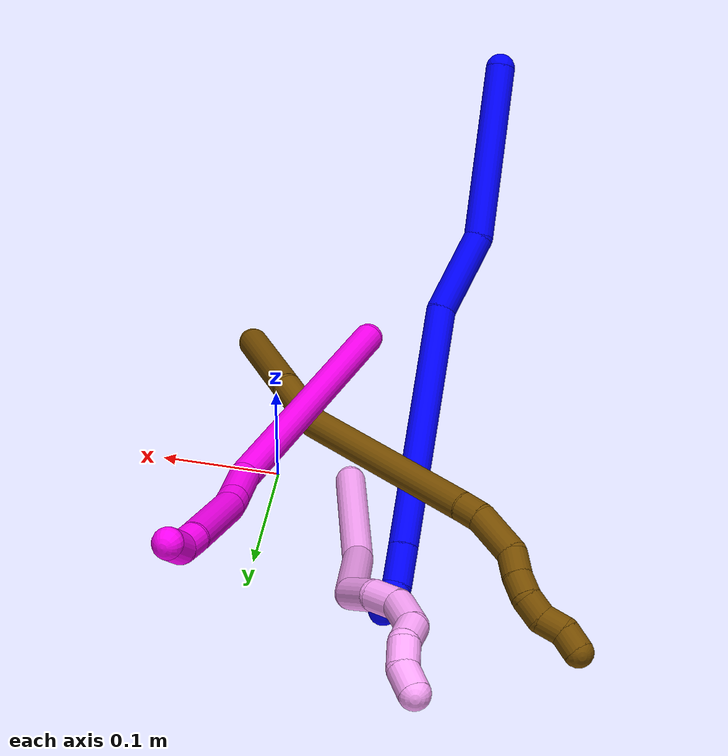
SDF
<sdf version="1.7">
 <world name="default">
  <model name="photoneo_s_sensor">
   <static>1</static>
   <pose>0 0 2 1.57079 1.57079 3.14159</pose>
   <link name="link">
    <inertial><mass>0.1</mass></inertial>
    <sensor name="sensor" type="depth">
     <update_rate>30</update_rate>
     <camera>
      <horizontal_fov>1.22</horizontal_fov>
      <image><width>1920</width><height>1200</height><format>B8G8R8</format></image>
      <clip><near>0.1</near><far>4</far></clip>
      <depth_camera><output>points</output></depth_camera>
     </camera>
     <plugin name="camera_plugin" filename="libgazebo_ros_depth_camera.so">
      <baseline>0.2</baseline>
      <alwaysOn>1</alwaysOn>
      <updateRate>0.0</updateRate>
      <cameraName>camera_ir</cameraName>
      <imageTopicName>/camera/color/image_raw</imageTopicName>
      <cameraInfoTopicName>/camera/color/camera_info</cameraInfoTopicName>
      <depthImageTopicName>/camera/depth/image_raw</depthImageTopicName>
      <depthImageCameraInfoTopicName>/camera/depth/camera_info</depthImageCameraInfoTopicName>
      <pointCloudTopicName>/camera/depth/points</pointCloudTopicName>
      <frameName>fr_optical</frameName>
      <pointCloudCutoff>0.1</pointCloudCutoff>
      <pointCloudCutoffMax>2.0</pointCloudCutoffMax>
      <distortionK1>0</distortionK1>
      <distortionK2>0</distortionK2>
      <distortionK3>0</distortionK3>
      <distortionT1>0</distortionT1>
      <distortionT2>0</distortionT2>
      <CxPrime>0</CxPrime>
      <Cx>0</Cx>
      <Cy>0</Cy>
      <focalLength>0</focalLength>
      <hackBaseline>0</hackBaseline>
     </plugin>
    </sensor>
   </link>
  </model>
  <model name="bin">
   <static>1</static>
   <link name="bottom">
    <collision name="collision-bottom">
     <pose>0 0 -0.01 0 -0 0</pose>
     <geometry><box><size>0.8 0.6 0.02</size></box></geometry>
     <surface>
      <friction><ode><mu>100</mu><mu2>100</mu2></ode></friction>
      <contact><collide_bitmask>65535</collide_bitmask></contact>
     </surface>
    </collision>
   </link>
   <link name="west_wall">
    <collision name="collision-west_wall">
     <pose>-0.41 0 0.1 0 -0 0</pose>
     <geometry><box><size>0.02 0.6 0.2</size></box></geometry>
     <surface>
      <friction><ode><mu>100</mu><mu2>100</mu2></ode></friction>
      <contact><collide_bitmask>65535</collide_bitmask></contact>
     </surface>
    </collision>
   </link>
   <link name="east_wall">
    <collision name="collision-east_wall">
     <pose>0.41 0 0.1 0 -0 0</pose>
     <geometry><box><size>0.02 0.6 0.2</size></box></geometry>
     <surface>
      <friction><ode><mu>100</mu><mu2>100</mu2></ode></friction>
      <contact><collide_bitmask>65535</collide_bitmask></contact>
     </surface>
    </collision>
   </link>
   <link name="south_wall">
    <collision name="collision-south_wall">
     <pose>0 -0.31 0.1 0 -0 0</pose>
     <geometry><box><size>0.8 0.02 0.2</size></box></geometry>
     <surface>
      <friction><ode><mu>100</mu><mu2>100</mu2></ode></friction>
      <contact><collide_bitmask>65535</collide_bitmask></contact>
     </surface>
    </collision>
   </link>
   <link name="north_wall">
    <collision name="collision-north_wall">
     <pose>0 0.31 0.1 0 -0 0</pose>
     <geometry><box><size>0.8 0.02 0.2</size></box></geometry>
     <surface>
      <friction><ode><mu>100</mu><mu2>100</mu2></ode></friction>
      <contact><collide_bitmask>65535</collide_bitmask></contact>
     </surface>
    </collision>
   </link>
  </model>
  <model name="1">
   <static>0</static>
   <link name="1">
    <collision name="collision-cylinder-e_1_1_4">
     <pose>-0.000336 0.070709 -0.029975 -1.97175 -0.004379 0.006613</pose>
     <geometry><cylinder><radius>0.0125</radius><length>0.153601</length></cylinder></geometry>
     <surface>
      <friction><ode><mu>1.16</mu><mu2>1.16</mu2><slip1>0</slip1><slip2>0</slip2></ode></friction>
      <contact><ode><kp>1e+06</kp><kd>1</kd><max_vel>0</max_vel><min_depth>0.001</min_depth></ode></contact>
     </surface>
    </collision>
    <visual name="visual-cylinder-e_1_1_4">
     <pose>-0.000336 0.070709 -0.029975 -1.97175 -0.004379 0.006613</pose>
     <geometry><cylinder><radius>0.0125</radius><length>0.153601</length></cylinder></geometry>
     <material><ambient>0 0 1 1</ambient></material>
    </visual>
    <collision name="collision-cylinder-e_2_4_5">
     <pose>0.010596 0.174072 -0.070614 -1.88647 0.316987 -0.433754</pose>
     <geometry><cylinder><radius>0.0125</radius><length>0.072305</length></cylinder></geometry>
     <surface>
      <friction><ode><mu>1.16</mu><mu2>1.16</mu2><slip1>0</slip1><slip2>0</slip2></ode></friction>
      <contact><ode><kp>1e+06</kp><kd>1</kd><max_vel>0</max_vel><min_depth>0.001</min_depth></ode></contact>
     </surface>
    </collision>
    <visual name="visual-cylinder-e_2_4_5">
     <pose>0.010596 0.174072 -0.070614 -1.88647 0.316987 -0.433754</pose>
     <geometry><cylinder><radius>0.0125</radius><length>0.072305</length></cylinder></geometry>
     <material><ambient>0 0 1 1</ambient></material>
    </visual>
    <collision name="collision-cylinder-e_3_5_6">
     <pose>0.021424 0.310558 -0.108025 -1.82291 -0.004117 0.005312</pose>
     <geometry><cylinder><radius>0.0125</radius><length>0.214445</length></cylinder></geometry>
     <surface>
      <friction><ode><mu>1.16</mu><mu2>1.16</mu2><slip1>0</slip1><slip2>0</slip2></ode></friction>
      <contact><ode><kp>1e+06</kp><kd>1</kd><max_vel>0</max_vel><min_depth>0.001</min_depth></ode></contact>
     </surface>
    </collision>
    <visual name="visual-cylinder-e_3_5_6">
     <pose>0.021424 0.310558 -0.108025 -1.82291 -0.004117 0.005312</pose>
     <geometry><cylinder><radius>0.0125</radius><length>0.214445</length></cylinder></geometry>
     <material><ambient>0 0 1 1</ambient></material>
    </visual>
    <collision name="collision-cylinder-e_4_6_7">
     <pose>0.02102 0.431373 -0.139416 -1.83775 0.002114 -0.002769</pose>
     <geometry><cylinder><radius>0.0125</radius><length>0.035213</length></cylinder></geometry>
     <surface>
      <friction><ode><mu>1.16</mu><mu2>1.16</mu2><slip1>0</slip1><slip2>0</slip2></ode></friction>
      <contact><ode><kp>1e+06</kp><kd>1</kd><max_vel>0</max_vel><min_depth>0.001</min_depth></ode></contact>
     </surface>
    </collision>
    <visual name="visual-cylinder-e_4_6_7">
     <pose>0.02102 0.431373 -0.139416 -1.83775 0.002114 -0.002769</pose>
     <geometry><cylinder><radius>0.0125</radius><length>0.035213</length></cylinder></geometry>
     <material><ambient>0 0 1 1</ambient></material>
    </visual>
    <collision name="collision-cylinder-e_5_7_2">
     <pose>0.024497 0.460073 -0.144452 -1.6042 0.285411 -0.294971</pose>
     <geometry><cylinder><radius>0.0125</radius><length>0.024435</length></cylinder></geometry>
     <surface>
      <friction><ode><mu>1.16</mu><mu2>1.16</mu2><slip1>0</slip1><slip2>0</slip2></ode></friction>
      <contact><ode><kp>1e+06</kp><kd>1</kd><max_vel>0</max_vel><min_depth>0.001</min_depth></ode></contact>
     </surface>
    </collision>
    <visual name="visual-cylinder-e_5_7_2">
     <pose>0.024497 0.460073 -0.144452 -1.6042 0.285411 -0.294971</pose>
     <geometry><cylinder><radius>0.0125</radius><length>0.024435</length></cylinder></geometry>
     <material><ambient>0 0 1 1</ambient></material>
    </visual>
    <collision name="collision-sphere-2">
     <pose>0.027937 0.47179 -0.144843 0 -0 0</pose>
     <geometry><sphere><radius>0.0125</radius></sphere></geometry>
     <surface>
      <friction><ode><mu>1.16</mu><mu2>1.16</mu2><slip1>0</slip1><slip2>0</slip2></ode></friction>
      <contact><ode><kp>1e+06</kp><kd>1</kd><max_vel>0</max_vel><min_depth>0.001</min_depth></ode></contact>
     </surface>
    </collision>
    <visual name="visual-sphere-2">
     <pose>0.027937 0.47179 -0.144843 0 -0 0</pose>
     <geometry><sphere><radius>0.0125</radius></sphere></geometry>
     <material><ambient>0 0 1 1</ambient></material>
    </visual>
    <collision name="collision-sphere-7">
     <pose>0.021057 0.448356 -0.14406 0 -0 0</pose>
     <geometry><sphere><radius>0.0125</radius></sphere></geometry>
     <surface>
      <friction><ode><mu>1.16</mu><mu2>1.16</mu2><slip1>0</slip1><slip2>0</slip2></ode></friction>
      <contact><ode><kp>1e+06</kp><kd>1</kd><max_vel>0</max_vel><min_depth>0.001</min_depth></ode></contact>
     </surface>
    </collision>
    <visual name="visual-sphere-7">
     <pose>0.021057 0.448356 -0.14406 0 -0 0</pose>
     <geometry><sphere><radius>0.0125</radius></sphere></geometry>
     <material><ambient>0 0 1 1</ambient></material>
    </visual>
    <collision name="collision-sphere-6">
     <pose>0.020982 0.41439 -0.134771 0 -0 0</pose>
     <geometry><sphere><radius>0.0125</radius></sphere></geometry>
     <surface>
      <friction><ode><mu>1.16</mu><mu2>1.16</mu2><slip1>0</slip1><slip2>0</slip2></ode></friction>
      <contact><ode><kp>1e+06</kp><kd>1</kd><max_vel>0</max_vel><min_depth>0.001</min_depth></ode></contact>
     </surface>
    </collision>
    <visual name="visual-sphere-6">
     <pose>0.020982 0.41439 -0.134771 0 -0 0</pose>
     <geometry><sphere><radius>0.0125</radius></sphere></geometry>
     <material><ambient>0 0 1 1</ambient></material>
    </visual>
    <collision name="collision-sphere-5">
     <pose>0.021865 0.206726 -0.081279 0 -0 0</pose>
     <geometry><sphere><radius>0.0125</radius></sphere></geometry>
     <surface>
      <friction><ode><mu>1.16</mu><mu2>1.16</mu2><slip1>0</slip1><slip2>0</slip2></ode></friction>
      <contact><ode><kp>1e+06</kp><kd>1</kd><max_vel>0</max_vel><min_depth>0.001</min_depth></ode></contact>
     </surface>
    </collision>
    <visual name="visual-sphere-5">
     <pose>0.021865 0.206726 -0.081279 0 -0 0</pose>
     <geometry><sphere><radius>0.0125</radius></sphere></geometry>
     <material><ambient>0 0 1 1</ambient></material>
    </visual>
    <collision name="collision-sphere-1">
     <geometry><sphere><radius>0.0125</radius></sphere></geometry>
     <surface>
      <friction><ode><mu>1.16</mu><mu2>1.16</mu2><slip1>0</slip1><slip2>0</slip2></ode></friction>
      <contact><ode><kp>1e+06</kp><kd>1</kd><max_vel>0</max_vel><min_depth>0.001</min_depth></ode></contact>
     </surface>
    </collision>
    <visual name="visual-sphere-1">
     <geometry><sphere><radius>0.0125</radius></sphere></geometry>
     <material><ambient>0 0 1 1</ambient></material>
    </visual>
    <collision name="collision-sphere-4">
     <pose>-0.000673 0.141418 -0.05995 0 -0 0</pose>
     <geometry><sphere><radius>0.0125</radius></sphere></geometry>
     <surface>
      <friction><ode><mu>1.16</mu><mu2>1.16</mu2><slip1>0</slip1><slip2>0</slip2></ode></friction>
      <contact><ode><kp>1e+06</kp><kd>1</kd><max_vel>0</max_vel><min_depth>0.001</min_depth></ode></contact>
     </surface>
    </collision>
    <visual name="visual-sphere-4">
     <pose>-0.000673 0.141418 -0.05995 0 -0 0</pose>
     <geometry><sphere><radius>0.0125</radius></sphere></geometry>
     <material><ambient>0 0 1 1</ambient></material>
    </visual>
    <inertial>
     <pose>0.013295 0.232954 -0.082629 0 -0 0</pose>
     <mass>0.5</mass>
     <inertia>
      <ixx>0.001169</ixx>
      <ixy>0</ixy>
      <ixz>0</ixz>
      <iyy>-0.000305</iyy>
      <iyz>0</iyz>
      <izz>-0.001143</izz>
     </inertia>
    </inertial>
   </link>
   <pose>-0.134274 -0.307726 0.217851 -0.130316 0.068608 -0.005236</pose>
  </model>
  <model name="4">
   <static>0</static>
   <link name="4">
    <collision name="collision-cylinder-e_1_1_4">
     <pose>0.008604 0.006642 0.075465 -0.087791 0.113089 -0.004973</pose>
     <geometry><cylinder><radius>0.0125</radius><length>0.152488</length></cylinder></geometry>
     <surface>
      <friction><ode><mu>1.16</mu><mu2>1.16</mu2><slip1>0</slip1><slip2>0</slip2></ode></friction>
      <contact><ode><kp>1e+06</kp><kd>1</kd><max_vel>0</max_vel><min_depth>0.001</min_depth></ode></contact>
     </surface>
    </collision>
    <visual name="visual-cylinder-e_1_1_4">
     <pose>0.008604 0.006642 0.075465 -0.087791 0.113089 -0.004973</pose>
     <geometry><cylinder><radius>0.0125</radius><length>0.152488</length></cylinder></geometry>
     <material><ambient>1 0.65098 0.996078 1</ambient></material>
    </visual>
    <collision name="collision-cylinder-e_2_4_5">
     <pose>0.009277 0.001152 0.232708 0.147285 -0.09564 -0.007061</pose>
     <geometry><cylinder><radius>0.0125</radius><length>0.166104</length></cylinder></geometry>
     <surface>
      <friction><ode><mu>1.16</mu><mu2>1.16</mu2><slip1>0</slip1><slip2>0</slip2></ode></friction>
      <contact><ode><kp>1e+06</kp><kd>1</kd><max_vel>0</max_vel><min_depth>0.001</min_depth></ode></contact>
     </surface>
    </collision>
    <visual name="visual-cylinder-e_2_4_5">
     <pose>0.009277 0.001152 0.232708 0.147285 -0.09564 -0.007061</pose>
     <geometry><cylinder><radius>0.0125</radius><length>0.166104</length></cylinder></geometry>
     <material><ambient>1 0.65098 0.996078 1</ambient></material>
    </visual>
    <collision name="collision-cylinder-e_3_5_6">
     <pose>-0.008115 -0.007681 0.334682 -0.161932 -0.433055 0.035695</pose>
     <geometry><cylinder><radius>0.0125</radius><length>0.045092</length></cylinder></geometry>
     <surface>
      <friction><ode><mu>1.16</mu><mu2>1.16</mu2><slip1>0</slip1><slip2>0</slip2></ode></friction>
      <contact><ode><kp>1e+06</kp><kd>1</kd><max_vel>0</max_vel><min_depth>0.001</min_depth></ode></contact>
     </surface>
    </collision>
    <visual name="visual-cylinder-e_3_5_6">
     <pose>-0.008115 -0.007681 0.334682 -0.161932 -0.433055 0.035695</pose>
     <geometry><cylinder><radius>0.0125</radius><length>0.045092</length></cylinder></geometry>
     <material><ambient>1 0.65098 0.996078 1</ambient></material>
    </visual>
    <collision name="collision-cylinder-e_4_6_7">
     <pose>-0.022363 0.002627 0.365583 -0.579648 -0.358006 0.107816</pose>
     <geometry><cylinder><radius>0.0125</radius><length>0.027321</length></cylinder></geometry>
     <surface>
      <friction><ode><mu>1.16</mu><mu2>1.16</mu2><slip1>0</slip1><slip2>0</slip2></ode></friction>
      <contact><ode><kp>1e+06</kp><kd>1</kd><max_vel>0</max_vel><min_depth>0.001</min_depth></ode></contact>
     </surface>
    </collision>
    <visual name="visual-cylinder-e_4_6_7">
     <pose>-0.022363 0.002627 0.365583 -0.579648 -0.358006 0.107816</pose>
     <geometry><cylinder><radius>0.0125</radius><length>0.027321</length></cylinder></geometry>
     <material><ambient>1 0.65098 0.996078 1</ambient></material>
    </visual>
    <collision name="collision-cylinder-e_5_7_8">
     <pose>-0.027649 0.014432 0.394455 -0.258191 -0.026559 0.003448</pose>
     <geometry><cylinder><radius>0.0125</radius><length>0.037593</length></cylinder></geometry>
     <surface>
      <friction><ode><mu>1.16</mu><mu2>1.16</mu2><slip1>0</slip1><slip2>0</slip2></ode></friction>
      <contact><ode><kp>1e+06</kp><kd>1</kd><max_vel>0</max_vel><min_depth>0.001</min_depth></ode></contact>
     </surface>
    </collision>
    <visual name="visual-cylinder-e_5_7_8">
     <pose>-0.027649 0.014432 0.394455 -0.258191 -0.026559 0.003448</pose>
     <geometry><cylinder><radius>0.0125</radius><length>0.037593</length></cylinder></geometry>
     <material><ambient>1 0.65098 0.996078 1</ambient></material>
    </visual>
    <collision name="collision-cylinder-e_6_8_9">
     <pose>-0.024455 0.017384 0.424622 0.152643 0.295307 0.022747</pose>
     <geometry><cylinder><radius>0.0125</radius><length>0.025382</length></cylinder></geometry>
     <surface>
      <friction><ode><mu>1.16</mu><mu2>1.16</mu2><slip1>0</slip1><slip2>0</slip2></ode></friction>
      <contact><ode><kp>1e+06</kp><kd>1</kd><max_vel>0</max_vel><min_depth>0.001</min_depth></ode></contact>
     </surface>
    </collision>
    <visual name="visual-cylinder-e_6_8_9">
     <pose>-0.024455 0.017384 0.424622 0.152643 0.295307 0.022747</pose>
     <geometry><cylinder><radius>0.0125</radius><length>0.025382</length></cylinder></geometry>
     <material><ambient>1 0.65098 0.996078 1</ambient></material>
    </visual>
    <collision name="collision-cylinder-e_7_9_10">
     <pose>-0.014733 0.018711 0.445597 -0.339847 0.564564 -0.099443</pose>
     <geometry><cylinder><radius>0.0125</radius><length>0.022535</length></cylinder></geometry>
     <surface>
      <friction><ode><mu>1.16</mu><mu2>1.16</mu2><slip1>0</slip1><slip2>0</slip2></ode></friction>
      <contact><ode><kp>1e+06</kp><kd>1</kd><max_vel>0</max_vel><min_depth>0.001</min_depth></ode></contact>
     </surface>
    </collision>
    <visual name="visual-cylinder-e_7_9_10">
     <pose>-0.014733 0.018711 0.445597 -0.339847 0.564564 -0.099443</pose>
     <geometry><cylinder><radius>0.0125</radius><length>0.022535</length></cylinder></geometry>
     <material><ambient>1 0.65098 0.996078 1</ambient></material>
    </visual>
    <collision name="collision-cylinder-e_8_10_2">
     <pose>-0.005965 0.028323 0.464002 -0.599081 0.235438 -0.073016</pose>
     <geometry><cylinder><radius>0.0125</radius><length>0.023486</length></cylinder></geometry>
     <surface>
      <friction><ode><mu>1.16</mu><mu2>1.16</mu2><slip1>0</slip1><slip2>0</slip2></ode></friction>
      <contact><ode><kp>1e+06</kp><kd>1</kd><max_vel>0</max_vel><min_depth>0.001</min_depth></ode></contact>
     </surface>
    </collision>
    <visual name="visual-cylinder-e_8_10_2">
     <pose>-0.005965 0.028323 0.464002 -0.599081 0.235438 -0.073016</pose>
     <geometry><cylinder><radius>0.0125</radius><length>0.023486</length></cylinder></geometry>
     <material><ambient>1 0.65098 0.996078 1</ambient></material>
    </visual>
    <collision name="collision-sphere-2">
     <pose>-0.003226 0.034762 0.473432 0 -0 0</pose>
     <geometry><sphere><radius>0.0125</radius></sphere></geometry>
     <surface>
      <friction><ode><mu>1.16</mu><mu2>1.16</mu2><slip1>0</slip1><slip2>0</slip2></ode></friction>
      <contact><ode><kp>1e+06</kp><kd>1</kd><max_vel>0</max_vel><min_depth>0.001</min_depth></ode></contact>
     </surface>
    </collision>
    <visual name="visual-sphere-2">
     <pose>-0.003226 0.034762 0.473432 0 -0 0</pose>
     <geometry><sphere><radius>0.0125</radius></sphere></geometry>
     <material><ambient>1 0.65098 0.996078 1</ambient></material>
    </visual>
    <collision name="collision-sphere-10">
     <pose>-0.008704 0.021884 0.454572 0 -0 0</pose>
     <geometry><sphere><radius>0.0125</radius></sphere></geometry>
     <surface>
      <friction><ode><mu>1.16</mu><mu2>1.16</mu2><slip1>0</slip1><slip2>0</slip2></ode></friction>
      <contact><ode><kp>1e+06</kp><kd>1</kd><max_vel>0</max_vel><min_depth>0.001</min_depth></ode></contact>
     </surface>
    </collision>
    <visual name="visual-sphere-10">
     <pose>-0.008704 0.021884 0.454572 0 -0 0</pose>
     <geometry><sphere><radius>0.0125</radius></sphere></geometry>
     <material><ambient>1 0.65098 0.996078 1</ambient></material>
    </visual>
    <collision name="collision-sphere-9">
     <pose>-0.020762 0.015538 0.436622 0 -0 0</pose>
     <geometry><sphere><radius>0.0125</radius></sphere></geometry>
     <surface>
      <friction><ode><mu>1.16</mu><mu2>1.16</mu2><slip1>0</slip1><slip2>0</slip2></ode></friction>
      <contact><ode><kp>1e+06</kp><kd>1</kd><max_vel>0</max_vel><min_depth>0.001</min_depth></ode></contact>
     </surface>
    </collision>
    <visual name="visual-sphere-9">
     <pose>-0.020762 0.015538 0.436622 0 -0 0</pose>
     <geometry><sphere><radius>0.0125</radius></sphere></geometry>
     <material><ambient>1 0.65098 0.996078 1</ambient></material>
    </visual>
    <collision name="collision-sphere-4">
     <pose>0.017208 0.013284 0.15093 0 -0 0</pose>
     <geometry><sphere><radius>0.0125</radius></sphere></geometry>
     <surface>
      <friction><ode><mu>1.16</mu><mu2>1.16</mu2><slip1>0</slip1><slip2>0</slip2></ode></friction>
      <contact><ode><kp>1e+06</kp><kd>1</kd><max_vel>0</max_vel><min_depth>0.001</min_depth></ode></contact>
     </surface>
    </collision>
    <visual name="visual-sphere-4">
     <pose>0.017208 0.013284 0.15093 0 -0 0</pose>
     <geometry><sphere><radius>0.0125</radius></sphere></geometry>
     <material><ambient>1 0.65098 0.996078 1</ambient></material>
    </visual>
    <collision name="collision-sphere-1">
     <geometry><sphere><radius>0.0125</radius></sphere></geometry>
     <surface>
      <friction><ode><mu>1.16</mu><mu2>1.16</mu2><slip1>0</slip1><slip2>0</slip2></ode></friction>
      <contact><ode><kp>1e+06</kp><kd>1</kd><max_vel>0</max_vel><min_depth>0.001</min_depth></ode></contact>
     </surface>
    </collision>
    <visual name="visual-sphere-1">
     <geometry><sphere><radius>0.0125</radius></sphere></geometry>
     <material><ambient>1 0.65098 0.996078 1</ambient></material>
    </visual>
    <collision name="collision-sphere-8">
     <pose>-0.028148 0.01923 0.412622 0 -0 0</pose>
     <geometry><sphere><radius>0.0125</radius></sphere></geometry>
     <surface>
      <friction><ode><mu>1.16</mu><mu2>1.16</mu2><slip1>0</slip1><slip2>0</slip2></ode></friction>
      <contact><ode><kp>1e+06</kp><kd>1</kd><max_vel>0</max_vel><min_depth>0.001</min_depth></ode></contact>
     </surface>
    </collision>
    <visual name="visual-sphere-8">
     <pose>-0.028148 0.01923 0.412622 0 -0 0</pose>
     <geometry><sphere><radius>0.0125</radius></sphere></geometry>
     <material><ambient>1 0.65098 0.996078 1</ambient></material>
    </visual>
    <collision name="collision-sphere-5">
     <pose>0.001346 -0.01098 0.314485 0 -0 0</pose>
     <geometry><sphere><radius>0.0125</radius></sphere></geometry>
     <surface>
      <friction><ode><mu>1.16</mu><mu2>1.16</mu2><slip1>0</slip1><slip2>0</slip2></ode></friction>
      <contact><ode><kp>1e+06</kp><kd>1</kd><max_vel>0</max_vel><min_depth>0.001</min_depth></ode></contact>
     </surface>
    </collision>
    <visual name="visual-sphere-5">
     <pose>0.001346 -0.01098 0.314485 0 -0 0</pose>
     <geometry><sphere><radius>0.0125</radius></sphere></geometry>
     <material><ambient>1 0.65098 0.996078 1</ambient></material>
    </visual>
    <collision name="collision-sphere-6">
     <pose>-0.017577 -0.004381 0.354878 0 -0 0</pose>
     <geometry><sphere><radius>0.0125</radius></sphere></geometry>
     <surface>
      <friction><ode><mu>1.16</mu><mu2>1.16</mu2><slip1>0</slip1><slip2>0</slip2></ode></friction>
      <contact><ode><kp>1e+06</kp><kd>1</kd><max_vel>0</max_vel><min_depth>0.001</min_depth></ode></contact>
     </surface>
    </collision>
    <visual name="visual-sphere-6">
     <pose>-0.017577 -0.004381 0.354878 0 -0 0</pose>
     <geometry><sphere><radius>0.0125</radius></sphere></geometry>
     <material><ambient>1 0.65098 0.996078 1</ambient></material>
    </visual>
    <collision name="collision-sphere-7">
     <pose>-0.02715 0.009635 0.376288 0 -0 0</pose>
     <geometry><sphere><radius>0.0125</radius></sphere></geometry>
     <surface>
      <friction><ode><mu>1.16</mu><mu2>1.16</mu2><slip1>0</slip1><slip2>0</slip2></ode></friction>
      <contact><ode><kp>1e+06</kp><kd>1</kd><max_vel>0</max_vel><min_depth>0.001</min_depth></ode></contact>
     </surface>
    </collision>
    <visual name="visual-sphere-7">
     <pose>-0.02715 0.009635 0.376288 0 -0 0</pose>
     <geometry><sphere><radius>0.0125</radius></sphere></geometry>
     <material><ambient>1 0.65098 0.996078 1</ambient></material>
    </visual>
    <inertial>
     <pose>-0.000512 0.006 0.243572 0 -0 0</pose>
     <mass>0.5</mass>
     <inertia>
      <ixx>0.000705</ixx>
      <ixy>0</ixy>
      <ixz>0</ixz>
      <iyy>0.000706</iyy>
      <iyz>0</iyz>
      <izz>6.8e-05</izz>
     </inertia>
    </inertial>
   </link>
   <pose>-0.063887 0.005632 0.011416 -0.777373 0.765423 0.847723</pose>
  </model>
  <model name="10">
   <static>0</static>
   <link name="10">
    <collision name="collision-cylinder-e_1_1_4">
     <pose>0.00665 0.017803 0.138217 -0.128097 0.047683 -0.003059</pose>
     <geometry><cylinder><radius>0.0125</radius><length>0.279036</length></cylinder></geometry>
     <surface>
      <friction><ode><mu>1.16</mu><mu2>1.16</mu2><slip1>0</slip1><slip2>0</slip2></ode></friction>
      <contact><ode><kp>1e+06</kp><kd>1</kd><max_vel>0</max_vel><min_depth>0.001</min_depth></ode></contact>
     </surface>
    </collision>
    <visual name="visual-cylinder-e_1_1_4">
     <pose>0.00665 0.017803 0.138217 -0.128097 0.047683 -0.003059</pose>
     <geometry><cylinder><radius>0.0125</radius><length>0.279036</length></cylinder></geometry>
     <material><ambient>1 0 0.964706 1</ambient></material>
    </visual>
    <collision name="collision-cylinder-e_2_4_5">
     <pose>0.009109 0.036305 0.300352 -0.029237 -0.173416 0.002542</pose>
     <geometry><cylinder><radius>0.0125</radius><length>0.048583</length></cylinder></geometry>
     <surface>
      <friction><ode><mu>1.16</mu><mu2>1.16</mu2><slip1>0</slip1><slip2>0</slip2></ode></friction>
      <contact><ode><kp>1e+06</kp><kd>1</kd><max_vel>0</max_vel><min_depth>0.001</min_depth></ode></contact>
     </surface>
    </collision>
    <visual name="visual-cylinder-e_2_4_5">
     <pose>0.009109 0.036305 0.300352 -0.029237 -0.173416 0.002542</pose>
     <geometry><cylinder><radius>0.0125</radius><length>0.048583</length></cylinder></geometry>
     <material><ambient>1 0 0.964706 1</ambient></material>
    </visual>
    <collision name="collision-cylinder-e_3_5_6">
     <pose>0.003307 0.036582 0.334297 0.042096 -0.15908 -0.003356</pose>
     <geometry><cylinder><radius>0.0125</radius><length>0.020332</length></cylinder></geometry>
     <surface>
      <friction><ode><mu>1.16</mu><mu2>1.16</mu2><slip1>0</slip1><slip2>0</slip2></ode></friction>
      <contact><ode><kp>1e+06</kp><kd>1</kd><max_vel>0</max_vel><min_depth>0.001</min_depth></ode></contact>
     </surface>
    </collision>
    <visual name="visual-cylinder-e_3_5_6">
     <pose>0.003307 0.036582 0.334297 0.042096 -0.15908 -0.003356</pose>
     <geometry><cylinder><radius>0.0125</radius><length>0.020332</length></cylinder></geometry>
     <material><ambient>1 0 0.964706 1</ambient></material>
    </visual>
    <collision name="collision-cylinder-e_4_6_7">
     <pose>-0.003668 0.029363 0.396831 0.128735 -0.100991 -0.006515</pose>
     <geometry><cylinder><radius>0.0125</radius><length>0.106428</length></cylinder></geometry>
     <surface>
      <friction><ode><mu>1.16</mu><mu2>1.16</mu2><slip1>0</slip1><slip2>0</slip2></ode></friction>
      <contact><ode><kp>1e+06</kp><kd>1</kd><max_vel>0</max_vel><min_depth>0.001</min_depth></ode></contact>
     </surface>
    </collision>
    <visual name="visual-cylinder-e_4_6_7">
     <pose>-0.003668 0.029363 0.396831 0.128735 -0.100991 -0.006515</pose>
     <geometry><cylinder><radius>0.0125</radius><length>0.106428</length></cylinder></geometry>
     <material><ambient>1 0 0.964706 1</ambient></material>
    </visual>
    <collision name="collision-cylinder-e_5_7_8">
     <pose>-0.008003 0.022923 0.45991 -0.033731 0.097115 -0.001639</pose>
     <geometry><cylinder><radius>0.0125</radius><length>0.021261</length></cylinder></geometry>
     <surface>
      <friction><ode><mu>1.16</mu><mu2>1.16</mu2><slip1>0</slip1><slip2>0</slip2></ode></friction>
      <contact><ode><kp>1e+06</kp><kd>1</kd><max_vel>0</max_vel><min_depth>0.001</min_depth></ode></contact>
     </surface>
    </collision>
    <visual name="visual-cylinder-e_5_7_8">
     <pose>-0.008003 0.022923 0.45991 -0.033731 0.097115 -0.001639</pose>
     <geometry><cylinder><radius>0.0125</radius><length>0.021261</length></cylinder></geometry>
     <material><ambient>1 0 0.964706 1</ambient></material>
    </visual>
    <collision name="collision-cylinder-e_6_8_2">
     <pose>-0.006066 0.01766 0.481253 0.480956 0.074433 0.018261</pose>
     <geometry><cylinder><radius>0.0125</radius><length>0.024361</length></cylinder></geometry>
     <surface>
      <friction><ode><mu>1.16</mu><mu2>1.16</mu2><slip1>0</slip1><slip2>0</slip2></ode></friction>
      <contact><ode><kp>1e+06</kp><kd>1</kd><max_vel>0</max_vel><min_depth>0.001</min_depth></ode></contact>
     </surface>
    </collision>
    <visual name="visual-cylinder-e_6_8_2">
     <pose>-0.006066 0.01766 0.481253 0.480956 0.074433 0.018261</pose>
     <geometry><cylinder><radius>0.0125</radius><length>0.024361</length></cylinder></geometry>
     <material><ambient>1 0 0.964706 1</ambient></material>
    </visual>
    <collision name="collision-sphere-2">
     <pose>-0.00516 0.012041 0.492021 0 -0 0</pose>
     <geometry><sphere><radius>0.0125</radius></sphere></geometry>
     <surface>
      <friction><ode><mu>1.16</mu><mu2>1.16</mu2><slip1>0</slip1><slip2>0</slip2></ode></friction>
      <contact><ode><kp>1e+06</kp><kd>1</kd><max_vel>0</max_vel><min_depth>0.001</min_depth></ode></contact>
     </surface>
    </collision>
    <visual name="visual-sphere-2">
     <pose>-0.00516 0.012041 0.492021 0 -0 0</pose>
     <geometry><sphere><radius>0.0125</radius></sphere></geometry>
     <material><ambient>1 0 0.964706 1</ambient></material>
    </visual>
    <collision name="collision-sphere-4">
     <pose>0.0133 0.035605 0.276435 0 -0 0</pose>
     <geometry><sphere><radius>0.0125</radius></sphere></geometry>
     <surface>
      <friction><ode><mu>1.16</mu><mu2>1.16</mu2><slip1>0</slip1><slip2>0</slip2></ode></friction>
      <contact><ode><kp>1e+06</kp><kd>1</kd><max_vel>0</max_vel><min_depth>0.001</min_depth></ode></contact>
     </surface>
    </collision>
    <visual name="visual-sphere-4">
     <pose>0.0133 0.035605 0.276435 0 -0 0</pose>
     <geometry><sphere><radius>0.0125</radius></sphere></geometry>
     <material><ambient>1 0 0.964706 1</ambient></material>
    </visual>
    <collision name="collision-sphere-1">
     <geometry><sphere><radius>0.0125</radius></sphere></geometry>
     <surface>
      <friction><ode><mu>1.16</mu><mu2>1.16</mu2><slip1>0</slip1><slip2>0</slip2></ode></friction>
      <contact><ode><kp>1e+06</kp><kd>1</kd><max_vel>0</max_vel><min_depth>0.001</min_depth></ode></contact>
     </surface>
    </collision>
    <visual name="visual-sphere-1">
     <geometry><sphere><radius>0.0125</radius></sphere></geometry>
     <material><ambient>1 0 0.964706 1</ambient></material>
    </visual>
    <collision name="collision-sphere-8">
     <pose>-0.006972 0.02328 0.470484 0 -0 0</pose>
     <geometry><sphere><radius>0.0125</radius></sphere></geometry>
     <surface>
      <friction><ode><mu>1.16</mu><mu2>1.16</mu2><slip1>0</slip1><slip2>0</slip2></ode></friction>
      <contact><ode><kp>1e+06</kp><kd>1</kd><max_vel>0</max_vel><min_depth>0.001</min_depth></ode></contact>
     </surface>
    </collision>
    <visual name="visual-sphere-8">
     <pose>-0.006972 0.02328 0.470484 0 -0 0</pose>
     <geometry><sphere><radius>0.0125</radius></sphere></geometry>
     <material><ambient>1 0 0.964706 1</ambient></material>
    </visual>
    <collision name="collision-sphere-5">
     <pose>0.004917 0.037004 0.324269 0 -0 0</pose>
     <geometry><sphere><radius>0.0125</radius></sphere></geometry>
     <surface>
      <friction><ode><mu>1.16</mu><mu2>1.16</mu2><slip1>0</slip1><slip2>0</slip2></ode></friction>
      <contact><ode><kp>1e+06</kp><kd>1</kd><max_vel>0</max_vel><min_depth>0.001</min_depth></ode></contact>
     </surface>
    </collision>
    <visual name="visual-sphere-5">
     <pose>0.004917 0.037004 0.324269 0 -0 0</pose>
     <geometry><sphere><radius>0.0125</radius></sphere></geometry>
     <material><ambient>1 0 0.964706 1</ambient></material>
    </visual>
    <collision name="collision-sphere-6">
     <pose>0.001697 0.03616 0.344326 0 -0 0</pose>
     <geometry><sphere><radius>0.0125</radius></sphere></geometry>
     <surface>
      <friction><ode><mu>1.16</mu><mu2>1.16</mu2><slip1>0</slip1><slip2>0</slip2></ode></friction>
      <contact><ode><kp>1e+06</kp><kd>1</kd><max_vel>0</max_vel><min_depth>0.001</min_depth></ode></contact>
     </surface>
    </collision>
    <visual name="visual-sphere-6">
     <pose>0.001697 0.03616 0.344326 0 -0 0</pose>
     <geometry><sphere><radius>0.0125</radius></sphere></geometry>
     <material><ambient>1 0 0.964706 1</ambient></material>
    </visual>
    <collision name="collision-sphere-7">
     <pose>-0.009033 0.022566 0.449335 0 -0 0</pose>
     <geometry><sphere><radius>0.0125</radius></sphere></geometry>
     <surface>
      <friction><ode><mu>1.16</mu><mu2>1.16</mu2><slip1>0</slip1><slip2>0</slip2></ode></friction>
      <contact><ode><kp>1e+06</kp><kd>1</kd><max_vel>0</max_vel><min_depth>0.001</min_depth></ode></contact>
     </surface>
    </collision>
    <visual name="visual-sphere-7">
     <pose>-0.009033 0.022566 0.449335 0 -0 0</pose>
     <geometry><sphere><radius>0.0125</radius></sphere></geometry>
     <material><ambient>1 0 0.964706 1</ambient></material>
    </visual>
    <inertial>
     <pose>0.003314 0.023036 0.247384 0 -0 0</pose>
     <mass>0.5</mass>
     <inertia>
      <ixx>0.001933</ixx>
      <ixy>0</ixy>
      <ixz>0</ixz>
      <iyy>0.001921</iyy>
      <iyz>0</iyz>
      <izz>-0.000254</izz>
     </inertia>
    </inertial>
   </link>
   <pose>-0.055139 -0.116783 0.060312 -1.10366 0.117746 -0.099051</pose>
  </model>
  <model name="12">
   <static>0</static>
   <link name="12">
    <collision name="collision-cylinder-e_1_1_4">
     <pose>-0.00204 0.010033 0.054325 -0.182617 -0.036906 0.00338</pose>
     <geometry><cylinder><radius>0.0125</radius><length>0.110563</length></cylinder></geometry>
     <surface>
      <friction><ode><mu>1.16</mu><mu2>1.16</mu2><slip1>0</slip1><slip2>0</slip2></ode></friction>
      <contact><ode><kp>1e+06</kp><kd>1</kd><max_vel>0</max_vel><min_depth>0.001</min_depth></ode></contact>
     </surface>
    </collision>
    <visual name="visual-cylinder-e_1_1_4">
     <pose>-0.00204 0.010033 0.054325 -0.182617 -0.036906 0.00338</pose>
     <geometry><cylinder><radius>0.0125</radius><length>0.110563</length></cylinder></geometry>
     <material><ambient>0.466667 0.301961 0 1</ambient></material>
    </visual>
    <collision name="collision-cylinder-e_2_4_5">
     <pose>-0.007752 0.032501 0.131094 -0.506006 -0.14216 0.036812</pose>
     <geometry><cylinder><radius>0.0125</radius><length>0.051839</length></cylinder></geometry>
     <surface>
      <friction><ode><mu>1.16</mu><mu2>1.16</mu2><slip1>0</slip1><slip2>0</slip2></ode></friction>
      <contact><ode><kp>1e+06</kp><kd>1</kd><max_vel>0</max_vel><min_depth>0.001</min_depth></ode></contact>
     </surface>
    </collision>
    <visual name="visual-cylinder-e_2_4_5">
     <pose>-0.007752 0.032501 0.131094 -0.506006 -0.14216 0.036812</pose>
     <geometry><cylinder><radius>0.0125</radius><length>0.051839</length></cylinder></geometry>
     <material><ambient>0.466667 0.301961 0 1</ambient></material>
    </visual>
    <collision name="collision-cylinder-e_3_5_6">
     <pose>-0.050338 0.079411 0.222659 -0.462633 -0.466679 0.111841</pose>
     <geometry><cylinder><radius>0.0125</radius><length>0.172981</length></cylinder></geometry>
     <surface>
      <friction><ode><mu>1.16</mu><mu2>1.16</mu2><slip1>0</slip1><slip2>0</slip2></ode></friction>
      <contact><ode><kp>1e+06</kp><kd>1</kd><max_vel>0</max_vel><min_depth>0.001</min_depth></ode></contact>
     </surface>
    </collision>
    <visual name="visual-cylinder-e_3_5_6">
     <pose>-0.050338 0.079411 0.222659 -0.462633 -0.466679 0.111841</pose>
     <geometry><cylinder><radius>0.0125</radius><length>0.172981</length></cylinder></geometry>
     <material><ambient>0.466667 0.301961 0 1</ambient></material>
    </visual>
    <collision name="collision-cylinder-e_4_6_7">
     <pose>-0.094115 0.118759 0.299108 -0.586992 -0.504788 0.155569</pose>
     <geometry><cylinder><radius>0.0125</radius><length>0.020109</length></cylinder></geometry>
     <surface>
      <friction><ode><mu>1.16</mu><mu2>1.16</mu2><slip1>0</slip1><slip2>0</slip2></ode></friction>
      <contact><ode><kp>1e+06</kp><kd>1</kd><max_vel>0</max_vel><min_depth>0.001</min_depth></ode></contact>
     </surface>
    </collision>
    <visual name="visual-cylinder-e_4_6_7">
     <pose>-0.094115 0.118759 0.299108 -0.586992 -0.504788 0.155569</pose>
     <geometry><cylinder><radius>0.0125</radius><length>0.020109</length></cylinder></geometry>
     <material><ambient>0.466667 0.301961 0 1</ambient></material>
    </visual>
    <collision name="collision-cylinder-e_5_7_8">
     <pose>-0.104379 0.137088 0.321545 -0.727536 -0.260901 0.099812</pose>
     <geometry><cylinder><radius>0.0125</radius><length>0.041882</length></cylinder></geometry>
     <surface>
      <friction><ode><mu>1.16</mu><mu2>1.16</mu2><slip1>0</slip1><slip2>0</slip2></ode></friction>
      <contact><ode><kp>1e+06</kp><kd>1</kd><max_vel>0</max_vel><min_depth>0.001</min_depth></ode></contact>
     </surface>
    </collision>
    <visual name="visual-cylinder-e_5_7_8">
     <pose>-0.104379 0.137088 0.321545 -0.727536 -0.260901 0.099812</pose>
     <geometry><cylinder><radius>0.0125</radius><length>0.041882</length></cylinder></geometry>
     <material><ambient>0.466667 0.301961 0 1</ambient></material>
    </visual>
    <collision name="collision-cylinder-e_6_8_9">
     <pose>-0.107882 0.158153 0.344114 -0.795439 0.176338 -0.074239</pose>
     <geometry><cylinder><radius>0.0125</radius><length>0.021648</length></cylinder></geometry>
     <surface>
      <friction><ode><mu>1.16</mu><mu2>1.16</mu2><slip1>0</slip1><slip2>0</slip2></ode></friction>
      <contact><ode><kp>1e+06</kp><kd>1</kd><max_vel>0</max_vel><min_depth>0.001</min_depth></ode></contact>
     </surface>
    </collision>
    <visual name="visual-cylinder-e_6_8_9">
     <pose>-0.107882 0.158153 0.344114 -0.795439 0.176338 -0.074239</pose>
     <geometry><cylinder><radius>0.0125</radius><length>0.021648</length></cylinder></geometry>
     <material><ambient>0.466667 0.301961 0 1</ambient></material>
    </visual>
    <collision name="collision-cylinder-e_7_9_10">
     <pose>-0.1058 0.172842 0.358676 -0.783664 0.018275 -0.007551</pose>
     <geometry><cylinder><radius>0.0125</radius><length>0.020059</length></cylinder></geometry>
     <surface>
      <friction><ode><mu>1.16</mu><mu2>1.16</mu2><slip1>0</slip1><slip2>0</slip2></ode></friction>
      <contact><ode><kp>1e+06</kp><kd>1</kd><max_vel>0</max_vel><min_depth>0.001</min_depth></ode></contact>
     </surface>
    </collision>
    <visual name="visual-cylinder-e_7_9_10">
     <pose>-0.1058 0.172842 0.358676 -0.783664 0.018275 -0.007551</pose>
     <geometry><cylinder><radius>0.0125</radius><length>0.020059</length></cylinder></geometry>
     <material><ambient>0.466667 0.301961 0 1</ambient></material>
    </visual>
    <collision name="collision-cylinder-e_8_10_11">
     <pose>-0.108277 0.188361 0.370462 -1.06426 -0.268966 0.158988</pose>
     <geometry><cylinder><radius>0.0125</radius><length>0.020026</length></cylinder></geometry>
     <surface>
      <friction><ode><mu>1.16</mu><mu2>1.16</mu2><slip1>0</slip1><slip2>0</slip2></ode></friction>
      <contact><ode><kp>1e+06</kp><kd>1</kd><max_vel>0</max_vel><min_depth>0.001</min_depth></ode></contact>
     </surface>
    </collision>
    <visual name="visual-cylinder-e_8_10_11">
     <pose>-0.108277 0.188361 0.370462 -1.06426 -0.268966 0.158988</pose>
     <geometry><cylinder><radius>0.0125</radius><length>0.020026</length></cylinder></geometry>
     <material><ambient>0.466667 0.301961 0 1</ambient></material>
    </visual>
    <collision name="collision-cylinder-e_9_11_12">
     <pose>-0.11728 0.203291 0.380205 -0.908567 -0.656645 0.329694</pose>
     <geometry><cylinder><radius>0.0125</radius><length>0.020778</length></cylinder></geometry>
     <surface>
      <friction><ode><mu>1.16</mu><mu2>1.16</mu2><slip1>0</slip1><slip2>0</slip2></ode></friction>
      <contact><ode><kp>1e+06</kp><kd>1</kd><max_vel>0</max_vel><min_depth>0.001</min_depth></ode></contact>
     </surface>
    </collision>
    <visual name="visual-cylinder-e_9_11_12">
     <pose>-0.11728 0.203291 0.380205 -0.908567 -0.656645 0.329694</pose>
     <geometry><cylinder><radius>0.0125</radius><length>0.020778</length></cylinder></geometry>
     <material><ambient>0.466667 0.301961 0 1</ambient></material>
    </visual>
    <collision name="collision-cylinder-e_10_12_2">
     <pose>-0.125692 0.217875 0.390864 -0.965638 -0.207258 0.108927</pose>
     <geometry><cylinder><radius>0.0125</radius><length>0.020115</length></cylinder></geometry>
     <surface>
      <friction><ode><mu>1.16</mu><mu2>1.16</mu2><slip1>0</slip1><slip2>0</slip2></ode></friction>
      <contact><ode><kp>1e+06</kp><kd>1</kd><max_vel>0</max_vel><min_depth>0.001</min_depth></ode></contact>
     </surface>
    </collision>
    <visual name="visual-cylinder-e_10_12_2">
     <pose>-0.125692 0.217875 0.390864 -0.965638 -0.207258 0.108927</pose>
     <geometry><cylinder><radius>0.0125</radius><length>0.020115</length></cylinder></geometry>
     <material><ambient>0.466667 0.301961 0 1</ambient></material>
    </visual>
    <collision name="collision-sphere-2">
     <pose>-0.127761 0.225969 0.396463 0 -0 0</pose>
     <geometry><sphere><radius>0.0125</radius></sphere></geometry>
     <surface>
      <friction><ode><mu>1.16</mu><mu2>1.16</mu2><slip1>0</slip1><slip2>0</slip2></ode></friction>
      <contact><ode><kp>1e+06</kp><kd>1</kd><max_vel>0</max_vel><min_depth>0.001</min_depth></ode></contact>
     </surface>
    </collision>
    <visual name="visual-sphere-2">
     <pose>-0.127761 0.225969 0.396463 0 -0 0</pose>
     <geometry><sphere><radius>0.0125</radius></sphere></geometry>
     <material><ambient>0.466667 0.301961 0 1</ambient></material>
    </visual>
    <collision name="collision-sphere-12">
     <pose>-0.123622 0.20978 0.385264 0 -0 0</pose>
     <geometry><sphere><radius>0.0125</radius></sphere></geometry>
     <surface>
      <friction><ode><mu>1.16</mu><mu2>1.16</mu2><slip1>0</slip1><slip2>0</slip2></ode></friction>
      <contact><ode><kp>1e+06</kp><kd>1</kd><max_vel>0</max_vel><min_depth>0.001</min_depth></ode></contact>
     </surface>
    </collision>
    <visual name="visual-sphere-12">
     <pose>-0.123622 0.20978 0.385264 0 -0 0</pose>
     <geometry><sphere><radius>0.0125</radius></sphere></geometry>
     <material><ambient>0.466667 0.301961 0 1</ambient></material>
    </visual>
    <collision name="collision-sphere-11">
     <pose>-0.110938 0.196802 0.375145 0 -0 0</pose>
     <geometry><sphere><radius>0.0125</radius></sphere></geometry>
     <surface>
      <friction><ode><mu>1.16</mu><mu2>1.16</mu2><slip1>0</slip1><slip2>0</slip2></ode></friction>
      <contact><ode><kp>1e+06</kp><kd>1</kd><max_vel>0</max_vel><min_depth>0.001</min_depth></ode></contact>
     </surface>
    </collision>
    <visual name="visual-sphere-11">
     <pose>-0.110938 0.196802 0.375145 0 -0 0</pose>
     <geometry><sphere><radius>0.0125</radius></sphere></geometry>
     <material><ambient>0.466667 0.301961 0 1</ambient></material>
    </visual>
    <collision name="collision-sphere-10">
     <pose>-0.105617 0.17992 0.365779 0 -0 0</pose>
     <geometry><sphere><radius>0.0125</radius></sphere></geometry>
     <surface>
      <friction><ode><mu>1.16</mu><mu2>1.16</mu2><slip1>0</slip1><slip2>0</slip2></ode></friction>
      <contact><ode><kp>1e+06</kp><kd>1</kd><max_vel>0</max_vel><min_depth>0.001</min_depth></ode></contact>
     </surface>
    </collision>
    <visual name="visual-sphere-10">
     <pose>-0.105617 0.17992 0.365779 0 -0 0</pose>
     <geometry><sphere><radius>0.0125</radius></sphere></geometry>
     <material><ambient>0.466667 0.301961 0 1</ambient></material>
    </visual>
    <collision name="collision-sphere-9">
     <pose>-0.105983 0.165764 0.351573 0 -0 0</pose>
     <geometry><sphere><radius>0.0125</radius></sphere></geometry>
     <surface>
      <friction><ode><mu>1.16</mu><mu2>1.16</mu2><slip1>0</slip1><slip2>0</slip2></ode></friction>
      <contact><ode><kp>1e+06</kp><kd>1</kd><max_vel>0</max_vel><min_depth>0.001</min_depth></ode></contact>
     </surface>
    </collision>
    <visual name="visual-sphere-9">
     <pose>-0.105983 0.165764 0.351573 0 -0 0</pose>
     <geometry><sphere><radius>0.0125</radius></sphere></geometry>
     <material><ambient>0.466667 0.301961 0 1</ambient></material>
    </visual>
    <collision name="collision-sphere-4">
     <pose>-0.00408 0.020065 0.108651 0 -0 0</pose>
     <geometry><sphere><radius>0.0125</radius></sphere></geometry>
     <surface>
      <friction><ode><mu>1.16</mu><mu2>1.16</mu2><slip1>0</slip1><slip2>0</slip2></ode></friction>
      <contact><ode><kp>1e+06</kp><kd>1</kd><max_vel>0</max_vel><min_depth>0.001</min_depth></ode></contact>
     </surface>
    </collision>
    <visual name="visual-sphere-4">
     <pose>-0.00408 0.020065 0.108651 0 -0 0</pose>
     <geometry><sphere><radius>0.0125</radius></sphere></geometry>
     <material><ambient>0.466667 0.301961 0 1</ambient></material>
    </visual>
    <collision name="collision-sphere-1">
     <geometry><sphere><radius>0.0125</radius></sphere></geometry>
     <surface>
      <friction><ode><mu>1.16</mu><mu2>1.16</mu2><slip1>0</slip1><slip2>0</slip2></ode></friction>
      <contact><ode><kp>1e+06</kp><kd>1</kd><max_vel>0</max_vel><min_depth>0.001</min_depth></ode></contact>
     </surface>
    </collision>
    <visual name="visual-sphere-1">
     <geometry><sphere><radius>0.0125</radius></sphere></geometry>
     <material><ambient>0.466667 0.301961 0 1</ambient></material>
    </visual>
    <collision name="collision-sphere-8">
     <pose>-0.109781 0.150543 0.336655 0 -0 0</pose>
     <geometry><sphere><radius>0.0125</radius></sphere></geometry>
     <surface>
      <friction><ode><mu>1.16</mu><mu2>1.16</mu2><slip1>0</slip1><slip2>0</slip2></ode></friction>
      <contact><ode><kp>1e+06</kp><kd>1</kd><max_vel>0</max_vel><min_depth>0.001</min_depth></ode></contact>
     </surface>
    </collision>
    <visual name="visual-sphere-8">
     <pose>-0.109781 0.150543 0.336655 0 -0 0</pose>
     <geometry><sphere><radius>0.0125</radius></sphere></geometry>
     <material><ambient>0.466667 0.301961 0 1</ambient></material>
    </visual>
    <collision name="collision-sphere-5">
     <pose>-0.011424 0.044938 0.153537 0 -0 0</pose>
     <geometry><sphere><radius>0.0125</radius></sphere></geometry>
     <surface>
      <friction><ode><mu>1.16</mu><mu2>1.16</mu2><slip1>0</slip1><slip2>0</slip2></ode></friction>
      <contact><ode><kp>1e+06</kp><kd>1</kd><max_vel>0</max_vel><min_depth>0.001</min_depth></ode></contact>
     </surface>
    </collision>
    <visual name="visual-sphere-5">
     <pose>-0.011424 0.044938 0.153537 0 -0 0</pose>
     <geometry><sphere><radius>0.0125</radius></sphere></geometry>
     <material><ambient>0.466667 0.301961 0 1</ambient></material>
    </visual>
    <collision name="collision-sphere-6">
     <pose>-0.089252 0.113884 0.291781 0 -0 0</pose>
     <geometry><sphere><radius>0.0125</radius></sphere></geometry>
     <surface>
      <friction><ode><mu>1.16</mu><mu2>1.16</mu2><slip1>0</slip1><slip2>0</slip2></ode></friction>
      <contact><ode><kp>1e+06</kp><kd>1</kd><max_vel>0</max_vel><min_depth>0.001</min_depth></ode></contact>
     </surface>
    </collision>
    <visual name="visual-sphere-6">
     <pose>-0.089252 0.113884 0.291781 0 -0 0</pose>
     <geometry><sphere><radius>0.0125</radius></sphere></geometry>
     <material><ambient>0.466667 0.301961 0 1</ambient></material>
    </visual>
    <collision name="collision-sphere-7">
     <pose>-0.098977 0.123633 0.306435 0 -0 0</pose>
     <geometry><sphere><radius>0.0125</radius></sphere></geometry>
     <surface>
      <friction><ode><mu>1.16</mu><mu2>1.16</mu2><slip1>0</slip1><slip2>0</slip2></ode></friction>
      <contact><ode><kp>1e+06</kp><kd>1</kd><max_vel>0</max_vel><min_depth>0.001</min_depth></ode></contact>
     </surface>
    </collision>
    <visual name="visual-sphere-7">
     <pose>-0.098977 0.123633 0.306435 0 -0 0</pose>
     <geometry><sphere><radius>0.0125</radius></sphere></geometry>
     <material><ambient>0.466667 0.301961 0 1</ambient></material>
    </visual>
    <inertial>
     <pose>-0.05438 0.087859 0.217249 0 -0 0</pose>
     <mass>0.5</mass>
     <inertia>
      <ixx>0.000571</ixx>
      <ixy>0</ixy>
      <ixz>0</ixz>
      <iyy>0.000602</iyy>
      <iyz>0</iyz>
      <izz>2.5e-05</izz>
     </inertia>
    </inertial>
   </link>
   <pose>0.048246 -0.124134 0.027398 -0.981107 0.132482 0.526248</pose>
  </model>
 </world>
</sdf>
